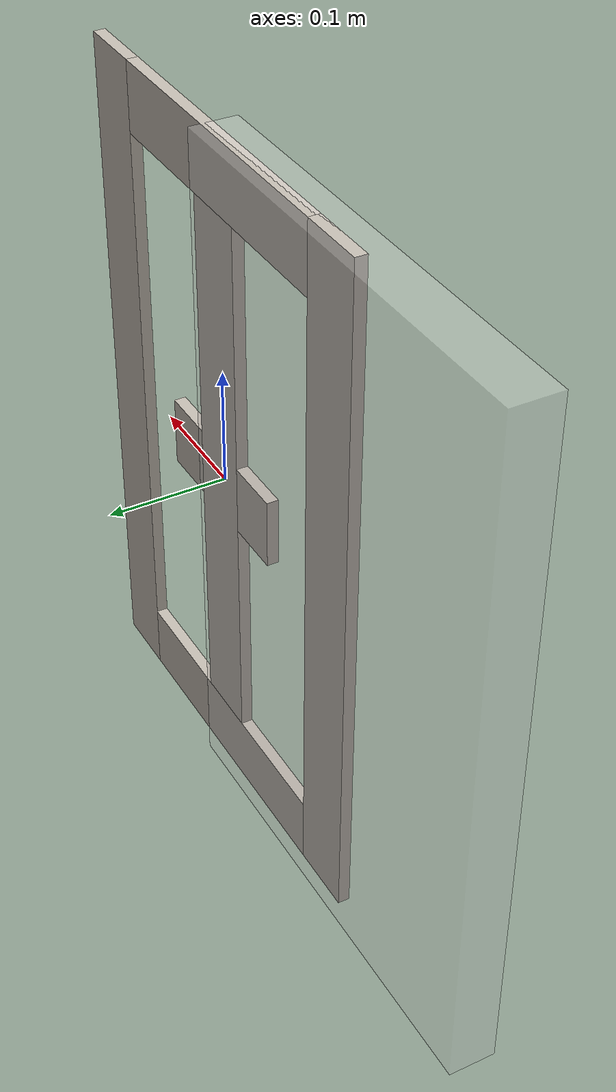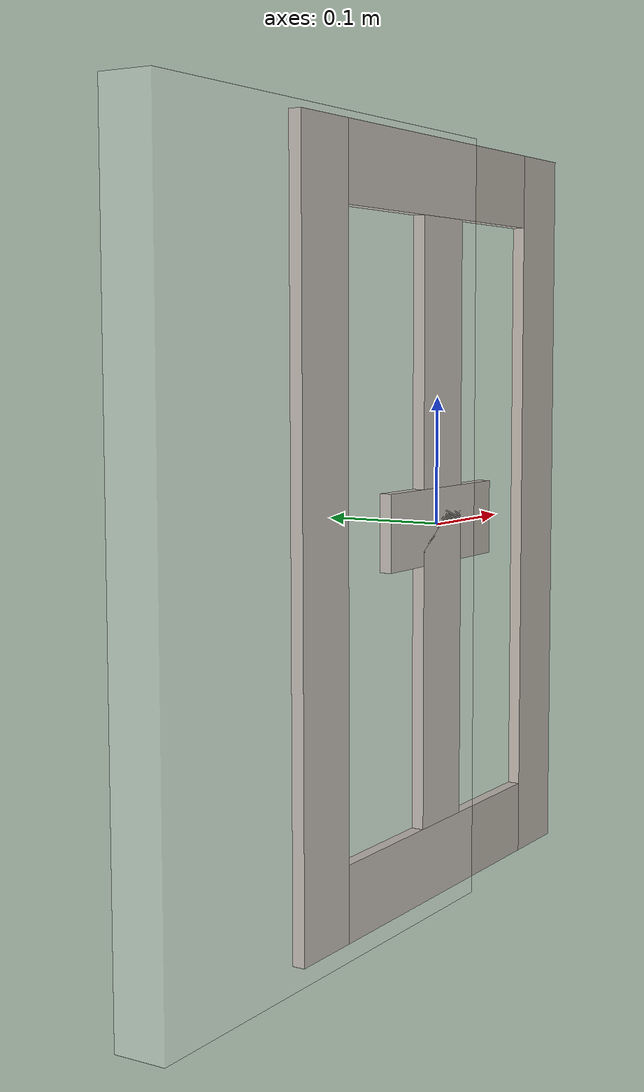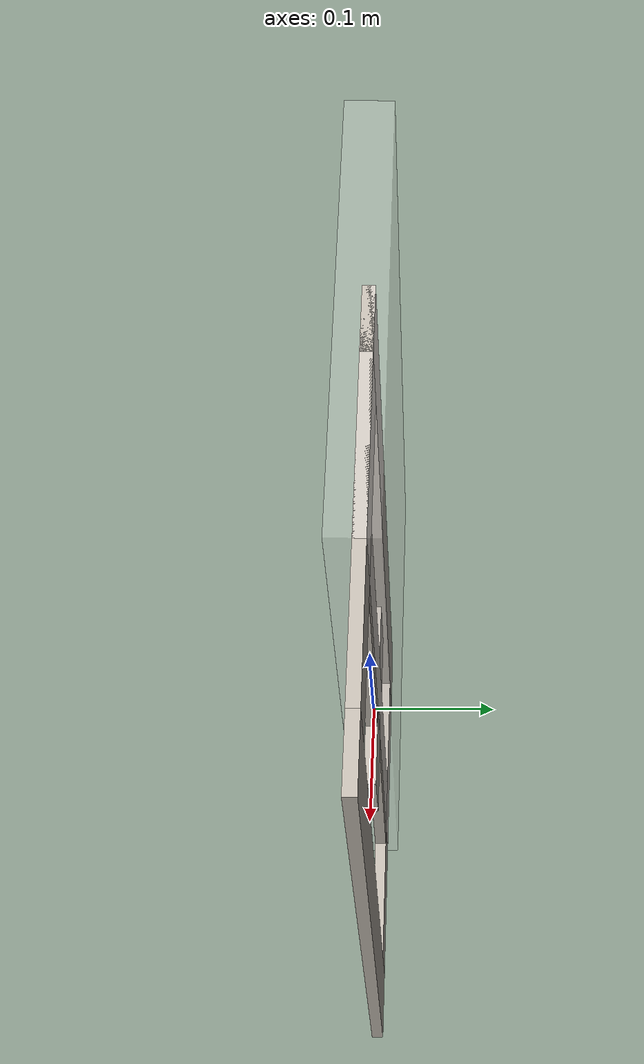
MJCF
<mujoco model="cab_panel_slab">
  <compiler angle="radian"/>
  <asset>
    <texture file="../../../textures/marble/marble_3.png" type="2d" name="tex"/>
    <material name="mat" reflectance="0.1" shininess="0.1" texrepeat="4 4" texuniform="true" texture="tex"/>
    <material name="transparent_material" rgba="1 1 1 0.1" specular="0" shininess="0"/>
  </asset>
  <default>
    <default class="cab">
      <geom group="0" density="10"/>
    </default>
  </default>
  <worldbody>
    <body>
      <body name="object">
        <geom pos="-0.185 -.005 0" size="0.2 0.3 0.02" type="box" material="transparent_material" class="cab" name="door" euler="1.5708 0 0"/>
        <body name="trims">
          <geom pos="0 0 0.27" size="0.14 0.03 0.005" type="box" material="mat" class="cab" name="trim_top" euler="1.5708 0 0"/>
          <geom pos="0 0 -0.27" size="0.14 0.03 0.005" type="box" material="mat" class="cab" name="trim_bottom" euler="1.5708 0 0"/>
          <geom pos="-0.17 0 0" size="0.03 0.3 0.005" type="box" material="mat" class="cab" name="trim_left" euler="1.5708 0 0"/>
          <geom pos="0.17 0 0" size="0.03 0.3 0.005" type="box" material="mat" class="cab" name="trim_right" euler="1.5708 0 0"/>
          <geom pos="0 0 0" size="0.03 0.24 0.005" type="box" material="mat" class="cab" name="vert_trim" euler="1.5708 0 0"/>
          <geom pos="0 0 0" size="0.08 0.03 0.005" type="box" material="mat" class="cab" name="horiz_trim" euler="1.5708 0 0"/>
        </body>
      </body>
    </body>
  </worldbody>
</mujoco>
